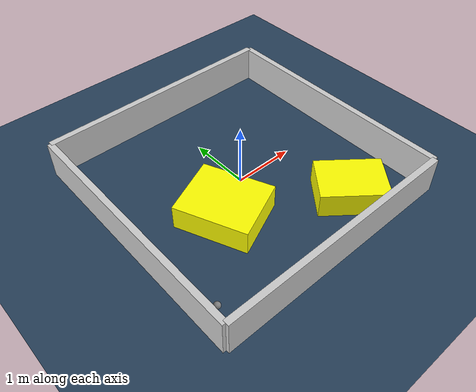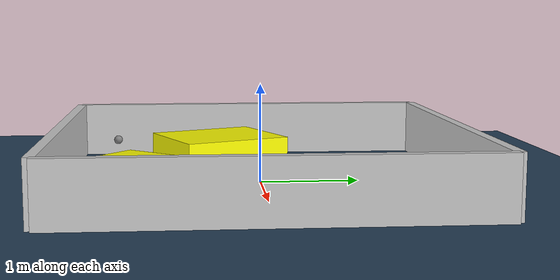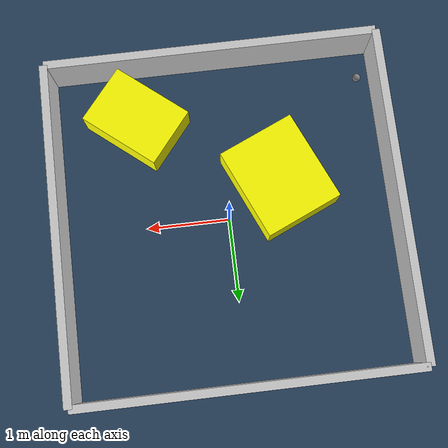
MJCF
<?xml version="1.0" ?>
<mujoco model="generated_environment">
  <option timestep="0.01" integrator="RK4" cone="elliptic"/>
  <default>
    <geom density="1"/>
  </default>
  <asset>
    <texture builtin="gradient" height="3072" rgb1="0.3 0.5 0.7" rgb2="0 0 0" type="skybox" width="512"/>
    <texture builtin="checker" height="300" mark="edge" markrgb="0.8 0.8 0.8" name="groundplane" rgb1="0.2 0.3 0.4" rgb2="0.1 0.2 0.3" type="2d" width="300"/>
    <material name="groundplane" reflectance="0.2" texrepeat="5 5" texture="groundplane" texuniform="true"/>
    <material name="robot" rgba="0.0 1.0 0.0 1"/>
  </asset>
  <worldbody>
    <light dir="0 0 -1" directional="true" pos="0 0 1.5"/>
    <geom condim="4" friction="1.0 0.005 0.001" material="groundplane" name="floor" size="0 0 0.05" type="plane"/>
    <body name="walls">
      <geom name="wall_1" condim="4" pos="-2.0 0.0 0.3" rgba="0.800000011920929 0.800000011920929 0.800000011920929 1.0" size="0.05 2.0 0.3" type="box"/>
      <geom name="wall_2" condim="4" pos="2.0 0.0 0.3" rgba="0.800000011920929 0.800000011920929 0.800000011920929 1.0" size="0.05 2.0 0.3" type="box"/>
      <geom name="wall_3" condim="4" pos="0.0 -2.0 0.3" rgba="0.800000011920929 0.800000011920929 0.800000011920929 1.0" size="2.0 0.05 0.3" type="box"/>
      <geom name="wall_4" condim="4" pos="0.0 2.0 0.3" rgba="0.800000011920929 0.800000011920929 0.800000011920929 1.0" size="2.0 0.05 0.3" type="box"/>
    </body>
    <body name="robot">
      <joint name="joint_x" type="slide" pos="0 0 0" axis="1 0 0"/>
      <joint name="joint_y" type="slide" pos="0 0 0" axis="0 1 0"/>
      <geom name="robot" type="sphere" pos="-1.7660202116360892 -1.5630590476726787 0.2" size="0.05" mass="5." friction="1.0 0.005 0.0001" condim="4"/>
      <site name="sensor_ball"/>
    </body>
    <body name="obstacle_1_movable">
      <geom name="obstacle_1_movable" condim="4" pos="-0.6487621997095923 -0.39948484713862475 0.2" euler="0 0 23.800450949164173" friction="1.0 0.005 0.001" rgba="1 1 0 1" size="0.48565464869810443 0.5721539747172975 0.2" type="box" mass="0.1"/>
      <joint type="free"/>
    </body>
    <body name="obstacle_2_movable">
      <geom name="obstacle_2_movable" condim="4" pos="0.9808669685127156 -1.3262028225844973 0.2" euler="0 0 230.99759411098933" friction="1.0 0.005 0.001" rgba="1 1 0 1" size="0.37564635094770227 0.5139813969114473 0.2" type="box" mass="0.1"/>
      <joint type="free"/>
    </body>
  </worldbody>
  <actuator>
    <motor name="actuator_x" joint="joint_x" gear="1" ctrlrange="-1 1"/>
    <motor name="actuator_y" joint="joint_y" gear="1" ctrlrange="-1 1"/>
  </actuator>
</mujoco>
